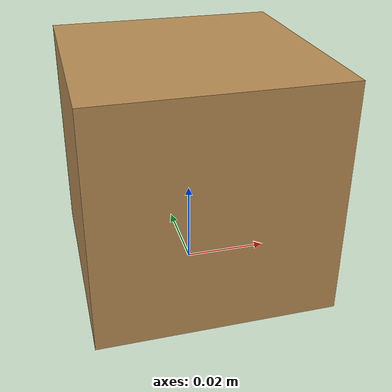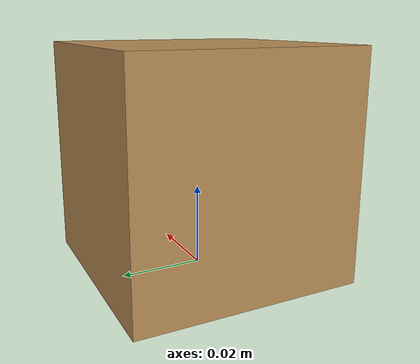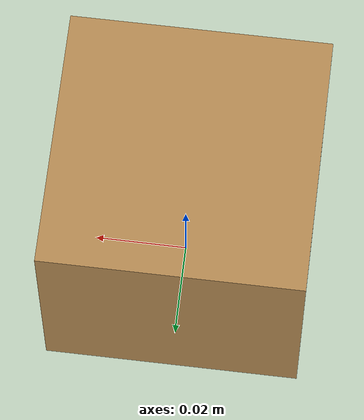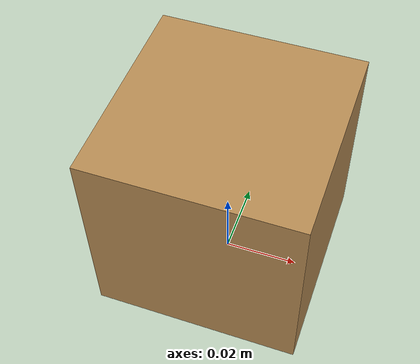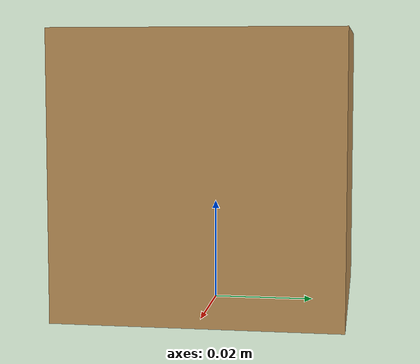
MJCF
<mujoco model="block_wood_55">
  <compiler angle="radian"/>
  <asset>
  </asset>
  <worldbody>
    <body name="block_wood_55">
      <freejoint/>
      <geom name="block_wood_55_g0" type="box" size="0.0275 0.0275 0.0275" pos="0 0 0.0275" rgba="0.72 0.55 0.33 1" mass="0.05" friction="0.05 0.05 0.005" condim="4"/>
    </body>
  </worldbody>
</mujoco>
